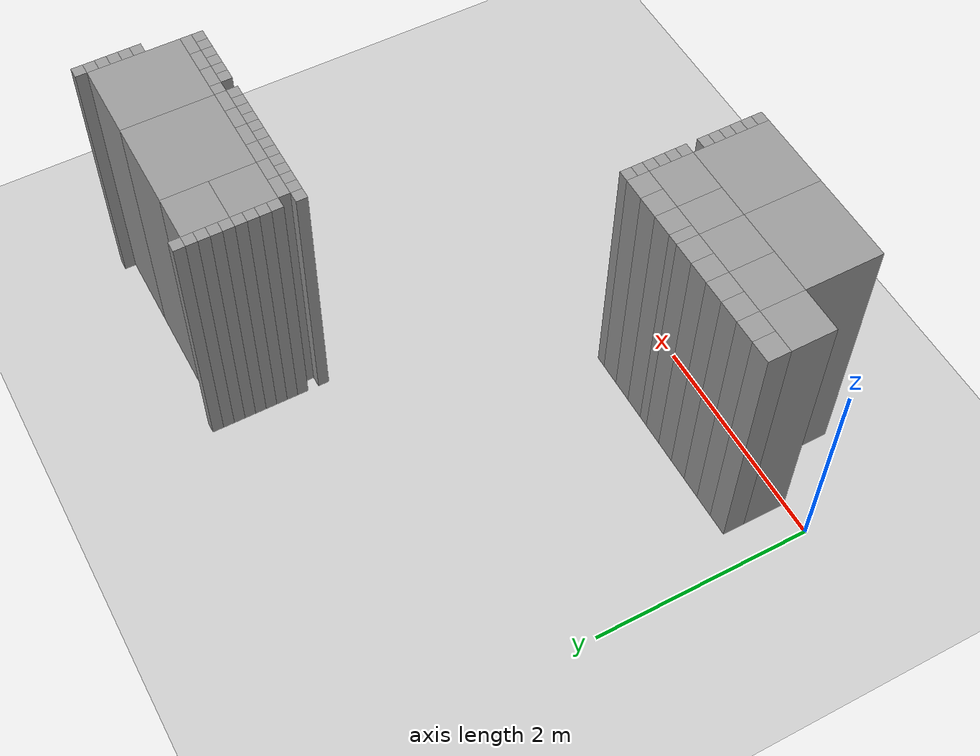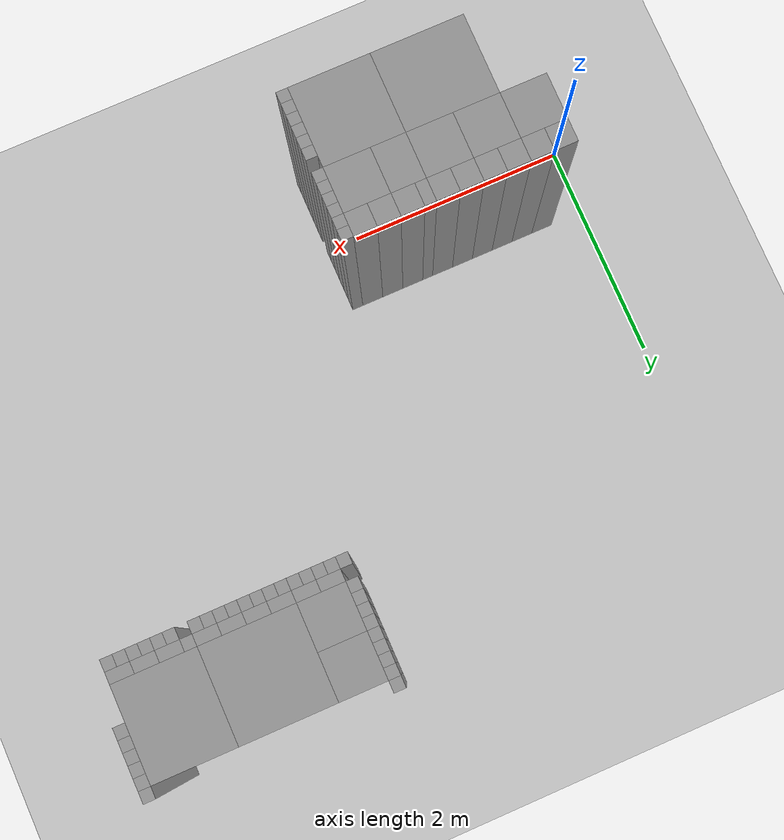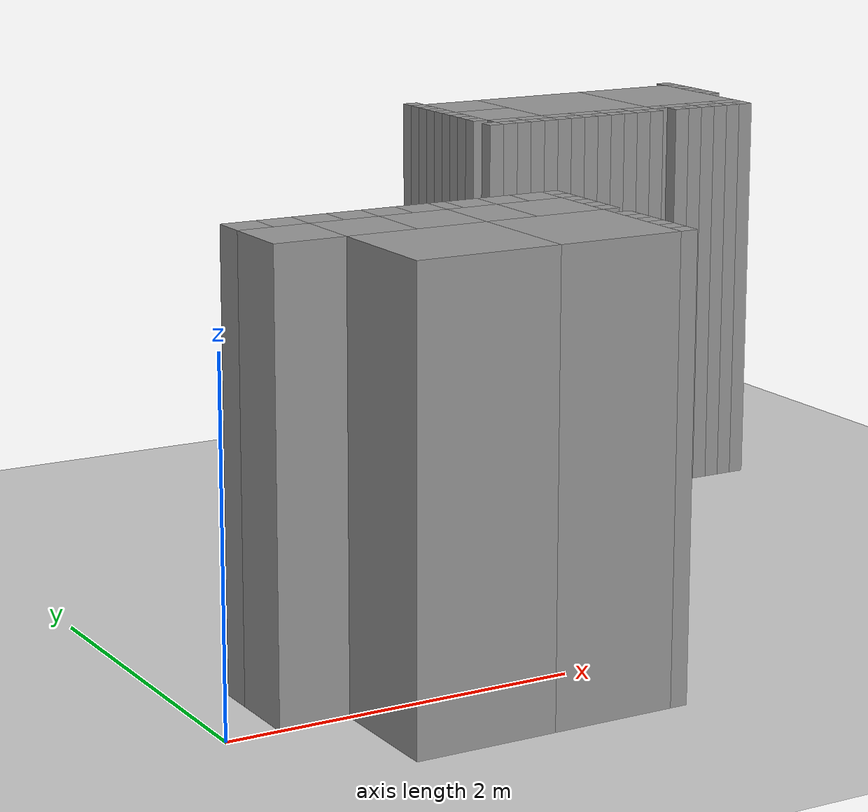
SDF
<sdf version="1.6">
 <world name="default">
  <include><uri>model://sun</uri></include>
  <include><uri>model://ground_plane</uri></include>
  <model name="stage_test">
   <static>1</static>
   <pose>-12 -12 0 0 0 0</pose>
   <link name="Wall_574">
    <pose>12.399999999999999 12.500000000000002 0 0 0 0</pose>
    <collision name="Wall_574_collision">
     <pose>0 0 1.25 0 0 0</pose>
     <geometry><box><size>0.1999999999999993 0.20000000000000107 2.5</size></box></geometry>
    </collision>
    <visual name="Wall_574_visual">
     <pose>0 0 1.25 0 0 0</pose>
     <geometry><box><size>0.1999999999999993 0.20000000000000107 2.5</size></box></geometry>
     <material>
      <script><uri>file://media/materials/scripts/gazebo.material</uri><name>Gazebo/Grey</name></script>
      <ambient>1 1 1 1</ambient>
     </material>
    </visual>
   </link>
   <link name="Wall_575">
    <pose>12.600000000000001 12.500000000000002 0 0 0 0</pose>
    <collision name="Wall_575_collision">
     <pose>0 0 1.25 0 0 0</pose>
     <geometry><box><size>0.20000000000000107 0.20000000000000107 2.5</size></box></geometry>
    </collision>
    <visual name="Wall_575_visual">
     <pose>0 0 1.25 0 0 0</pose>
     <geometry><box><size>0.20000000000000107 0.20000000000000107 2.5</size></box></geometry>
     <material>
      <script><uri>file://media/materials/scripts/gazebo.material</uri><name>Gazebo/Grey</name></script>
      <ambient>1 1 1 1</ambient>
     </material>
    </visual>
   </link>
   <link name="Wall_576">
    <pose>12.5 12.2 0 0 0 0</pose>
    <collision name="Wall_576_collision">
     <pose>0 0 1.25 0 0 0</pose>
     <geometry><box><size>0.40000000000000036 0.40000000000000036 2.5</size></box></geometry>
    </collision>
    <visual name="Wall_576_visual">
     <pose>0 0 1.25 0 0 0</pose>
     <geometry><box><size>0.40000000000000036 0.40000000000000036 2.5</size></box></geometry>
     <material>
      <script><uri>file://media/materials/scripts/gazebo.material</uri><name>Gazebo/Grey</name></script>
      <ambient>1 1 1 1</ambient>
     </material>
    </visual>
   </link>
   <link name="Wall_577">
    <pose>12.8 12.500000000000002 0 0 0 0</pose>
    <collision name="Wall_577_collision">
     <pose>0 0 1.25 0 0 0</pose>
     <geometry><box><size>0.1999999999999993 0.20000000000000107 2.5</size></box></geometry>
    </collision>
    <visual name="Wall_577_visual">
     <pose>0 0 1.25 0 0 0</pose>
     <geometry><box><size>0.1999999999999993 0.20000000000000107 2.5</size></box></geometry>
     <material>
      <script><uri>file://media/materials/scripts/gazebo.material</uri><name>Gazebo/Grey</name></script>
      <ambient>1 1 1 1</ambient>
     </material>
    </visual>
   </link>
   <link name="Wall_578">
    <pose>13.0 12.500000000000002 0 0 0 0</pose>
    <collision name="Wall_578_collision">
     <pose>0 0 1.25 0 0 0</pose>
     <geometry><box><size>0.20000000000000107 0.20000000000000107 2.5</size></box></geometry>
    </collision>
    <visual name="Wall_578_visual">
     <pose>0 0 1.25 0 0 0</pose>
     <geometry><box><size>0.20000000000000107 0.20000000000000107 2.5</size></box></geometry>
     <material>
      <script><uri>file://media/materials/scripts/gazebo.material</uri><name>Gazebo/Grey</name></script>
      <ambient>1 1 1 1</ambient>
     </material>
    </visual>
   </link>
   <link name="Wall_579">
    <pose>12.900000000000002 12.2 0 0 0 0</pose>
    <collision name="Wall_579_collision">
     <pose>0 0 1.25 0 0 0</pose>
     <geometry><box><size>0.40000000000000036 0.40000000000000036 2.5</size></box></geometry>
    </collision>
    <visual name="Wall_579_visual">
     <pose>0 0 1.25 0 0 0</pose>
     <geometry><box><size>0.40000000000000036 0.40000000000000036 2.5</size></box></geometry>
     <material>
      <script><uri>file://media/materials/scripts/gazebo.material</uri><name>Gazebo/Grey</name></script>
      <ambient>1 1 1 1</ambient>
     </material>
    </visual>
   </link>
   <link name="Wall_580">
    <pose>13.200000000000001 12.500000000000002 0 0 0 0</pose>
    <collision name="Wall_580_collision">
     <pose>0 0 1.25 0 0 0</pose>
     <geometry><box><size>0.1999999999999993 0.20000000000000107 2.5</size></box></geometry>
    </collision>
    <visual name="Wall_580_visual">
     <pose>0 0 1.25 0 0 0</pose>
     <geometry><box><size>0.1999999999999993 0.20000000000000107 2.5</size></box></geometry>
     <material>
      <script><uri>file://media/materials/scripts/gazebo.material</uri><name>Gazebo/Grey</name></script>
      <ambient>1 1 1 1</ambient>
     </material>
    </visual>
   </link>
   <link name="Wall_581">
    <pose>13.399999999999999 12.500000000000002 0 0 0 0</pose>
    <collision name="Wall_581_collision">
     <pose>0 0 1.25 0 0 0</pose>
     <geometry><box><size>0.1999999999999993 0.20000000000000107 2.5</size></box></geometry>
    </collision>
    <visual name="Wall_581_visual">
     <pose>0 0 1.25 0 0 0</pose>
     <geometry><box><size>0.1999999999999993 0.20000000000000107 2.5</size></box></geometry>
     <material>
      <script><uri>file://media/materials/scripts/gazebo.material</uri><name>Gazebo/Grey</name></script>
      <ambient>1 1 1 1</ambient>
     </material>
    </visual>
   </link>
   <link name="Wall_582">
    <pose>13.3 12.2 0 0 0 0</pose>
    <collision name="Wall_582_collision">
     <pose>0 0 1.25 0 0 0</pose>
     <geometry><box><size>0.3999999999999986 0.40000000000000036 2.5</size></box></geometry>
    </collision>
    <visual name="Wall_582_visual">
     <pose>0 0 1.25 0 0 0</pose>
     <geometry><box><size>0.3999999999999986 0.40000000000000036 2.5</size></box></geometry>
     <material>
      <script><uri>file://media/materials/scripts/gazebo.material</uri><name>Gazebo/Grey</name></script>
      <ambient>1 1 1 1</ambient>
     </material>
    </visual>
   </link>
   <link name="Wall_583">
    <pose>13.55 12.500000000000002 0 0 0 0</pose>
    <collision name="Wall_583_collision">
     <pose>0 0 1.25 0 0 0</pose>
     <geometry><box><size>0.10000000000000142 0.20000000000000107 2.5</size></box></geometry>
    </collision>
    <visual name="Wall_583_visual">
     <pose>0 0 1.25 0 0 0</pose>
     <geometry><box><size>0.10000000000000142 0.20000000000000107 2.5</size></box></geometry>
     <material>
      <script><uri>file://media/materials/scripts/gazebo.material</uri><name>Gazebo/Grey</name></script>
      <ambient>1 1 1 1</ambient>
     </material>
    </visual>
   </link>
   <link name="Wall_584">
    <pose>13.700000000000001 12.500000000000002 0 0 0 0</pose>
    <collision name="Wall_584_collision">
     <pose>0 0 1.25 0 0 0</pose>
     <geometry><box><size>0.1999999999999993 0.20000000000000107 2.5</size></box></geometry>
    </collision>
    <visual name="Wall_584_visual">
     <pose>0 0 1.25 0 0 0</pose>
     <geometry><box><size>0.1999999999999993 0.20000000000000107 2.5</size></box></geometry>
     <material>
      <script><uri>file://media/materials/scripts/gazebo.material</uri><name>Gazebo/Grey</name></script>
      <ambient>1 1 1 1</ambient>
     </material>
    </visual>
   </link>
   <link name="Wall_585">
    <pose>13.65 12.2 0 0 0 0</pose>
    <collision name="Wall_585_collision">
     <pose>0 0 1.25 0 0 0</pose>
     <geometry><box><size>0.3000000000000007 0.40000000000000036 2.5</size></box></geometry>
    </collision>
    <visual name="Wall_585_visual">
     <pose>0 0 1.25 0 0 0</pose>
     <geometry><box><size>0.3000000000000007 0.40000000000000036 2.5</size></box></geometry>
     <material>
      <script><uri>file://media/materials/scripts/gazebo.material</uri><name>Gazebo/Grey</name></script>
      <ambient>1 1 1 1</ambient>
     </material>
    </visual>
   </link>
   <link name="Wall_586">
    <pose>13.899999999999999 12.500000000000002 0 0 0 0</pose>
    <collision name="Wall_586_collision">
     <pose>0 0 1.25 0 0 0</pose>
     <geometry><box><size>0.1999999999999993 0.20000000000000107 2.5</size></box></geometry>
    </collision>
    <visual name="Wall_586_visual">
     <pose>0 0 1.25 0 0 0</pose>
     <geometry><box><size>0.1999999999999993 0.20000000000000107 2.5</size></box></geometry>
     <material>
      <script><uri>file://media/materials/scripts/gazebo.material</uri><name>Gazebo/Grey</name></script>
      <ambient>1 1 1 1</ambient>
     </material>
    </visual>
   </link>
   <link name="Wall_587">
    <pose>14.100000000000001 12.500000000000002 0 0 0 0</pose>
    <collision name="Wall_587_collision">
     <pose>0 0 1.25 0 0 0</pose>
     <geometry><box><size>0.20000000000000107 0.20000000000000107 2.5</size></box></geometry>
    </collision>
    <visual name="Wall_587_visual">
     <pose>0 0 1.25 0 0 0</pose>
     <geometry><box><size>0.20000000000000107 0.20000000000000107 2.5</size></box></geometry>
     <material>
      <script><uri>file://media/materials/scripts/gazebo.material</uri><name>Gazebo/Grey</name></script>
      <ambient>1 1 1 1</ambient>
     </material>
    </visual>
   </link>
   <link name="Wall_588">
    <pose>14.0 12.2 0 0 0 0</pose>
    <collision name="Wall_588_collision">
     <pose>0 0 1.25 0 0 0</pose>
     <geometry><box><size>0.40000000000000036 0.40000000000000036 2.5</size></box></geometry>
    </collision>
    <visual name="Wall_588_visual">
     <pose>0 0 1.25 0 0 0</pose>
     <geometry><box><size>0.40000000000000036 0.40000000000000036 2.5</size></box></geometry>
     <material>
      <script><uri>file://media/materials/scripts/gazebo.material</uri><name>Gazebo/Grey</name></script>
      <ambient>1 1 1 1</ambient>
     </material>
    </visual>
   </link>
   <link name="Wall_589">
    <pose>14.25 12.55 0 0 0 0</pose>
    <collision name="Wall_589_collision">
     <pose>0 0 1.25 0 0 0</pose>
     <geometry><box><size>0.09999999999999964 0.10000000000000142 2.5</size></box></geometry>
    </collision>
    <visual name="Wall_589_visual">
     <pose>0 0 1.25 0 0 0</pose>
     <geometry><box><size>0.09999999999999964 0.10000000000000142 2.5</size></box></geometry>
     <material>
      <script><uri>file://media/materials/scripts/gazebo.material</uri><name>Gazebo/Grey</name></script>
      <ambient>1 1 1 1</ambient>
     </material>
    </visual>
   </link>
   <link name="Wall_590">
    <pose>14.25 12.45 0 0 0 0</pose>
    <collision name="Wall_590_collision">
     <pose>0 0 1.25 0 0 0</pose>
     <geometry><box><size>0.09999999999999964 0.09999999999999964 2.5</size></box></geometry>
    </collision>
    <visual name="Wall_590_visual">
     <pose>0 0 1.25 0 0 0</pose>
     <geometry><box><size>0.09999999999999964 0.09999999999999964 2.5</size></box></geometry>
     <material>
      <script><uri>file://media/materials/scripts/gazebo.material</uri><name>Gazebo/Grey</name></script>
      <ambient>1 1 1 1</ambient>
     </material>
    </visual>
   </link>
   <link name="Wall_591">
    <pose>14.25 12.35 0 0 0 0</pose>
    <collision name="Wall_591_collision">
     <pose>0 0 1.25 0 0 0</pose>
     <geometry><box><size>0.09999999999999964 0.09999999999999964 2.5</size></box></geometry>
    </collision>
    <visual name="Wall_591_visual">
     <pose>0 0 1.25 0 0 0</pose>
     <geometry><box><size>0.09999999999999964 0.09999999999999964 2.5</size></box></geometry>
     <material>
      <script><uri>file://media/materials/scripts/gazebo.material</uri><name>Gazebo/Grey</name></script>
      <ambient>1 1 1 1</ambient>
     </material>
    </visual>
   </link>
   <link name="Wall_592">
    <pose>14.25 12.25 0 0 0 0</pose>
    <collision name="Wall_592_collision">
     <pose>0 0 1.25 0 0 0</pose>
     <geometry><box><size>0.09999999999999964 0.09999999999999964 2.5</size></box></geometry>
    </collision>
    <visual name="Wall_592_visual">
     <pose>0 0 1.25 0 0 0</pose>
     <geometry><box><size>0.09999999999999964 0.09999999999999964 2.5</size></box></geometry>
     <material>
      <script><uri>file://media/materials/scripts/gazebo.material</uri><name>Gazebo/Grey</name></script>
      <ambient>1 1 1 1</ambient>
     </material>
    </visual>
   </link>
   <link name="Wall_593">
    <pose>14.25 12.150000000000002 0 0 0 0</pose>
    <collision name="Wall_593_collision">
     <pose>0 0 1.25 0 0 0</pose>
     <geometry><box><size>0.09999999999999964 0.09999999999999964 2.5</size></box></geometry>
    </collision>
    <visual name="Wall_593_visual">
     <pose>0 0 1.25 0 0 0</pose>
     <geometry><box><size>0.09999999999999964 0.09999999999999964 2.5</size></box></geometry>
     <material>
      <script><uri>file://media/materials/scripts/gazebo.material</uri><name>Gazebo/Grey</name></script>
      <ambient>1 1 1 1</ambient>
     </material>
    </visual>
   </link>
   <link name="Wall_594">
    <pose>14.25 12.05 0 0 0 0</pose>
    <collision name="Wall_594_collision">
     <pose>0 0 1.25 0 0 0</pose>
     <geometry><box><size>0.09999999999999964 0.10000000000000142 2.5</size></box></geometry>
    </collision>
    <visual name="Wall_594_visual">
     <pose>0 0 1.25 0 0 0</pose>
     <geometry><box><size>0.09999999999999964 0.10000000000000142 2.5</size></box></geometry>
     <material>
      <script><uri>file://media/materials/scripts/gazebo.material</uri><name>Gazebo/Grey</name></script>
      <ambient>1 1 1 1</ambient>
     </material>
    </visual>
   </link>
   <link name="Wall_616">
    <pose>15.25 15.85 0 0 0 0</pose>
    <collision name="Wall_616_collision">
     <pose>0 0 1.25 0 0 0</pose>
     <geometry><box><size>0.09999999999999964 0.09999999999999964 2.5</size></box></geometry>
    </collision>
    <visual name="Wall_616_visual">
     <pose>0 0 1.25 0 0 0</pose>
     <geometry><box><size>0.09999999999999964 0.09999999999999964 2.5</size></box></geometry>
     <material>
      <script><uri>file://media/materials/scripts/gazebo.material</uri><name>Gazebo/Grey</name></script>
      <ambient>1 1 1 1</ambient>
     </material>
    </visual>
   </link>
   <link name="Wall_619">
    <pose>15.25 15.75 0 0 0 0</pose>
    <collision name="Wall_619_collision">
     <pose>0 0 1.25 0 0 0</pose>
     <geometry><box><size>0.09999999999999964 0.09999999999999964 2.5</size></box></geometry>
    </collision>
    <visual name="Wall_619_visual">
     <pose>0 0 1.25 0 0 0</pose>
     <geometry><box><size>0.09999999999999964 0.09999999999999964 2.5</size></box></geometry>
     <material>
      <script><uri>file://media/materials/scripts/gazebo.material</uri><name>Gazebo/Grey</name></script>
      <ambient>1 1 1 1</ambient>
     </material>
    </visual>
   </link>
   <link name="Wall_620">
    <pose>15.25 15.650000000000002 0 0 0 0</pose>
    <collision name="Wall_620_collision">
     <pose>0 0 1.25 0 0 0</pose>
     <geometry><box><size>0.09999999999999964 0.09999999999999964 2.5</size></box></geometry>
    </collision>
    <visual name="Wall_620_visual">
     <pose>0 0 1.25 0 0 0</pose>
     <geometry><box><size>0.09999999999999964 0.09999999999999964 2.5</size></box></geometry>
     <material>
      <script><uri>file://media/materials/scripts/gazebo.material</uri><name>Gazebo/Grey</name></script>
      <ambient>1 1 1 1</ambient>
     </material>
    </visual>
   </link>
   <link name="Wall_621">
    <pose>15.25 15.55 0 0 0 0</pose>
    <collision name="Wall_621_collision">
     <pose>0 0 1.25 0 0 0</pose>
     <geometry><box><size>0.09999999999999964 0.10000000000000142 2.5</size></box></geometry>
    </collision>
    <visual name="Wall_621_visual">
     <pose>0 0 1.25 0 0 0</pose>
     <geometry><box><size>0.09999999999999964 0.10000000000000142 2.5</size></box></geometry>
     <material>
      <script><uri>file://media/materials/scripts/gazebo.material</uri><name>Gazebo/Grey</name></script>
      <ambient>1 1 1 1</ambient>
     </material>
    </visual>
   </link>
   <link name="Wall_622">
    <pose>15.25 15.45 0 0 0 0</pose>
    <collision name="Wall_622_collision">
     <pose>0 0 1.25 0 0 0</pose>
     <geometry><box><size>0.09999999999999964 0.09999999999999964 2.5</size></box></geometry>
    </collision>
    <visual name="Wall_622_visual">
     <pose>0 0 1.25 0 0 0</pose>
     <geometry><box><size>0.09999999999999964 0.09999999999999964 2.5</size></box></geometry>
     <material>
      <script><uri>file://media/materials/scripts/gazebo.material</uri><name>Gazebo/Grey</name></script>
      <ambient>1 1 1 1</ambient>
     </material>
    </visual>
   </link>
   <link name="Wall_623">
    <pose>15.25 15.35 0 0 0 0</pose>
    <collision name="Wall_623_collision">
     <pose>0 0 1.25 0 0 0</pose>
     <geometry><box><size>0.09999999999999964 0.09999999999999964 2.5</size></box></geometry>
    </collision>
    <visual name="Wall_623_visual">
     <pose>0 0 1.25 0 0 0</pose>
     <geometry><box><size>0.09999999999999964 0.09999999999999964 2.5</size></box></geometry>
     <material>
      <script><uri>file://media/materials/scripts/gazebo.material</uri><name>Gazebo/Grey</name></script>
      <ambient>1 1 1 1</ambient>
     </material>
    </visual>
   </link>
   <link name="Wall_624">
    <pose>15.25 15.25 0 0 0 0</pose>
    <collision name="Wall_624_collision">
     <pose>0 0 1.25 0 0 0</pose>
     <geometry><box><size>0.09999999999999964 0.09999999999999964 2.5</size></box></geometry>
    </collision>
    <visual name="Wall_624_visual">
     <pose>0 0 1.25 0 0 0</pose>
     <geometry><box><size>0.09999999999999964 0.09999999999999964 2.5</size></box></geometry>
     <material>
      <script><uri>file://media/materials/scripts/gazebo.material</uri><name>Gazebo/Grey</name></script>
      <ambient>1 1 1 1</ambient>
     </material>
    </visual>
   </link>
   <link name="Wall_625">
    <pose>15.25 15.150000000000002 0 0 0 0</pose>
    <collision name="Wall_625_collision">
     <pose>0 0 1.25 0 0 0</pose>
     <geometry><box><size>0.09999999999999964 0.09999999999999964 2.5</size></box></geometry>
    </collision>
    <visual name="Wall_625_visual">
     <pose>0 0 1.25 0 0 0</pose>
     <geometry><box><size>0.09999999999999964 0.09999999999999964 2.5</size></box></geometry>
     <material>
      <script><uri>file://media/materials/scripts/gazebo.material</uri><name>Gazebo/Grey</name></script>
      <ambient>1 1 1 1</ambient>
     </material>
    </visual>
   </link>
   <link name="Wall_626">
    <pose>15.25 15.05 0 0 0 0</pose>
    <collision name="Wall_626_collision">
     <pose>0 0 1.25 0 0 0</pose>
     <geometry><box><size>0.09999999999999964 0.10000000000000142 2.5</size></box></geometry>
    </collision>
    <visual name="Wall_626_visual">
     <pose>0 0 1.25 0 0 0</pose>
     <geometry><box><size>0.09999999999999964 0.10000000000000142 2.5</size></box></geometry>
     <material>
      <script><uri>file://media/materials/scripts/gazebo.material</uri><name>Gazebo/Grey</name></script>
      <ambient>1 1 1 1</ambient>
     </material>
    </visual>
   </link>
   <link name="Wall_627">
    <pose>15.5 15.600000000000001 0 0 0 0</pose>
    <collision name="Wall_627_collision">
     <pose>0 0 1.25 0 0 0</pose>
     <geometry><box><size>0.40000000000000036 0.40000000000000036 2.5</size></box></geometry>
    </collision>
    <visual name="Wall_627_visual">
     <pose>0 0 1.25 0 0 0</pose>
     <geometry><box><size>0.40000000000000036 0.40000000000000036 2.5</size></box></geometry>
     <material>
      <script><uri>file://media/materials/scripts/gazebo.material</uri><name>Gazebo/Grey</name></script>
      <ambient>1 1 1 1</ambient>
     </material>
    </visual>
   </link>
   <link name="Wall_628">
    <pose>15.5 15.2 0 0 0 0</pose>
    <collision name="Wall_628_collision">
     <pose>0 0 1.25 0 0 0</pose>
     <geometry><box><size>0.40000000000000036 0.40000000000000036 2.5</size></box></geometry>
    </collision>
    <visual name="Wall_628_visual">
     <pose>0 0 1.25 0 0 0</pose>
     <geometry><box><size>0.40000000000000036 0.40000000000000036 2.5</size></box></geometry>
     <material>
      <script><uri>file://media/materials/scripts/gazebo.material</uri><name>Gazebo/Grey</name></script>
      <ambient>1 1 1 1</ambient>
     </material>
    </visual>
   </link>
   <link name="Wall_630">
    <pose>16.1 15.399999999999999 0 0 0 0</pose>
    <collision name="Wall_630_collision">
     <pose>0 0 1.25 0 0 0</pose>
     <geometry><box><size>0.7999999999999989 0.8000000000000007 2.5</size></box></geometry>
    </collision>
    <visual name="Wall_630_visual">
     <pose>0 0 1.25 0 0 0</pose>
     <geometry><box><size>0.7999999999999989 0.8000000000000007 2.5</size></box></geometry>
     <material>
      <script><uri>file://media/materials/scripts/gazebo.material</uri><name>Gazebo/Grey</name></script>
      <ambient>1 1 1 1</ambient>
     </material>
    </visual>
   </link>
   <link name="Wall_646">
    <pose>16.85 15.399999999999999 0 0 0 0</pose>
    <collision name="Wall_646_collision">
     <pose>0 0 1.25 0 0 0</pose>
     <geometry><box><size>0.6999999999999993 0.8000000000000007 2.5</size></box></geometry>
    </collision>
    <visual name="Wall_646_visual">
     <pose>0 0 1.25 0 0 0</pose>
     <geometry><box><size>0.6999999999999993 0.8000000000000007 2.5</size></box></geometry>
     <material>
      <script><uri>file://media/materials/scripts/gazebo.material</uri><name>Gazebo/Grey</name></script>
      <ambient>1 1 1 1</ambient>
     </material>
    </visual>
   </link>
   <link name="Wall_654">
    <pose>17.25 15.85 0 0 0 0</pose>
    <collision name="Wall_654_collision">
     <pose>0 0 1.25 0 0 0</pose>
     <geometry><box><size>0.10000000000000142 0.09999999999999964 2.5</size></box></geometry>
    </collision>
    <visual name="Wall_654_visual">
     <pose>0 0 1.25 0 0 0</pose>
     <geometry><box><size>0.10000000000000142 0.09999999999999964 2.5</size></box></geometry>
     <material>
      <script><uri>file://media/materials/scripts/gazebo.material</uri><name>Gazebo/Grey</name></script>
      <ambient>1 1 1 1</ambient>
     </material>
    </visual>
   </link>
   <link name="Wall_657">
    <pose>17.25 15.75 0 0 0 0</pose>
    <collision name="Wall_657_collision">
     <pose>0 0 1.25 0 0 0</pose>
     <geometry><box><size>0.10000000000000142 0.09999999999999964 2.5</size></box></geometry>
    </collision>
    <visual name="Wall_657_visual">
     <pose>0 0 1.25 0 0 0</pose>
     <geometry><box><size>0.10000000000000142 0.09999999999999964 2.5</size></box></geometry>
     <material>
      <script><uri>file://media/materials/scripts/gazebo.material</uri><name>Gazebo/Grey</name></script>
      <ambient>1 1 1 1</ambient>
     </material>
    </visual>
   </link>
   <link name="Wall_658">
    <pose>17.25 15.650000000000002 0 0 0 0</pose>
    <collision name="Wall_658_collision">
     <pose>0 0 1.25 0 0 0</pose>
     <geometry><box><size>0.10000000000000142 0.09999999999999964 2.5</size></box></geometry>
    </collision>
    <visual name="Wall_658_visual">
     <pose>0 0 1.25 0 0 0</pose>
     <geometry><box><size>0.10000000000000142 0.09999999999999964 2.5</size></box></geometry>
     <material>
      <script><uri>file://media/materials/scripts/gazebo.material</uri><name>Gazebo/Grey</name></script>
      <ambient>1 1 1 1</ambient>
     </material>
    </visual>
   </link>
   <link name="Wall_659">
    <pose>17.25 15.55 0 0 0 0</pose>
    <collision name="Wall_659_collision">
     <pose>0 0 1.25 0 0 0</pose>
     <geometry><box><size>0.10000000000000142 0.10000000000000142 2.5</size></box></geometry>
    </collision>
    <visual name="Wall_659_visual">
     <pose>0 0 1.25 0 0 0</pose>
     <geometry><box><size>0.10000000000000142 0.10000000000000142 2.5</size></box></geometry>
     <material>
      <script><uri>file://media/materials/scripts/gazebo.material</uri><name>Gazebo/Grey</name></script>
      <ambient>1 1 1 1</ambient>
     </material>
    </visual>
   </link>
   <link name="Wall_660">
    <pose>17.25 15.45 0 0 0 0</pose>
    <collision name="Wall_660_collision">
     <pose>0 0 1.25 0 0 0</pose>
     <geometry><box><size>0.10000000000000142 0.09999999999999964 2.5</size></box></geometry>
    </collision>
    <visual name="Wall_660_visual">
     <pose>0 0 1.25 0 0 0</pose>
     <geometry><box><size>0.10000000000000142 0.09999999999999964 2.5</size></box></geometry>
     <material>
      <script><uri>file://media/materials/scripts/gazebo.material</uri><name>Gazebo/Grey</name></script>
      <ambient>1 1 1 1</ambient>
     </material>
    </visual>
   </link>
   <link name="Wall_661">
    <pose>17.25 15.35 0 0 0 0</pose>
    <collision name="Wall_661_collision">
     <pose>0 0 1.25 0 0 0</pose>
     <geometry><box><size>0.10000000000000142 0.09999999999999964 2.5</size></box></geometry>
    </collision>
    <visual name="Wall_661_visual">
     <pose>0 0 1.25 0 0 0</pose>
     <geometry><box><size>0.10000000000000142 0.09999999999999964 2.5</size></box></geometry>
     <material>
      <script><uri>file://media/materials/scripts/gazebo.material</uri><name>Gazebo/Grey</name></script>
      <ambient>1 1 1 1</ambient>
     </material>
    </visual>
   </link>
   <link name="Wall_665">
    <pose>15.25 14.85 0 0 0 0</pose>
    <collision name="Wall_665_collision">
     <pose>0 0 1.25 0 0 0</pose>
     <geometry><box><size>0.09999999999999964 0.09999999999999964 2.5</size></box></geometry>
    </collision>
    <visual name="Wall_665_visual">
     <pose>0 0 1.25 0 0 0</pose>
     <geometry><box><size>0.09999999999999964 0.09999999999999964 2.5</size></box></geometry>
     <material>
      <script><uri>file://media/materials/scripts/gazebo.material</uri><name>Gazebo/Grey</name></script>
      <ambient>1 1 1 1</ambient>
     </material>
    </visual>
   </link>
   <link name="Wall_666">
    <pose>15.399999999999999 14.95 0 0 0 0</pose>
    <collision name="Wall_666_collision">
     <pose>0 0 1.25 0 0 0</pose>
     <geometry><box><size>0.1999999999999993 0.09999999999999964 2.5</size></box></geometry>
    </collision>
    <visual name="Wall_666_visual">
     <pose>0 0 1.25 0 0 0</pose>
     <geometry><box><size>0.1999999999999993 0.09999999999999964 2.5</size></box></geometry>
     <material>
      <script><uri>file://media/materials/scripts/gazebo.material</uri><name>Gazebo/Grey</name></script>
      <ambient>1 1 1 1</ambient>
     </material>
    </visual>
   </link>
   <link name="Wall_667">
    <pose>15.350000000000001 14.85 0 0 0 0</pose>
    <collision name="Wall_667_collision">
     <pose>0 0 1.25 0 0 0</pose>
     <geometry><box><size>0.09999999999999964 0.09999999999999964 2.5</size></box></geometry>
    </collision>
    <visual name="Wall_667_visual">
     <pose>0 0 1.25 0 0 0</pose>
     <geometry><box><size>0.09999999999999964 0.09999999999999964 2.5</size></box></geometry>
     <material>
      <script><uri>file://media/materials/scripts/gazebo.material</uri><name>Gazebo/Grey</name></script>
      <ambient>1 1 1 1</ambient>
     </material>
    </visual>
   </link>
   <link name="Wall_668">
    <pose>15.45 14.85 0 0 0 0</pose>
    <collision name="Wall_668_collision">
     <pose>0 0 1.25 0 0 0</pose>
     <geometry><box><size>0.09999999999999964 0.09999999999999964 2.5</size></box></geometry>
    </collision>
    <visual name="Wall_668_visual">
     <pose>0 0 1.25 0 0 0</pose>
     <geometry><box><size>0.09999999999999964 0.09999999999999964 2.5</size></box></geometry>
     <material>
      <script><uri>file://media/materials/scripts/gazebo.material</uri><name>Gazebo/Grey</name></script>
      <ambient>1 1 1 1</ambient>
     </material>
    </visual>
   </link>
   <link name="Wall_669">
    <pose>15.600000000000001 14.95 0 0 0 0</pose>
    <collision name="Wall_669_collision">
     <pose>0 0 1.25 0 0 0</pose>
     <geometry><box><size>0.20000000000000107 0.09999999999999964 2.5</size></box></geometry>
    </collision>
    <visual name="Wall_669_visual">
     <pose>0 0 1.25 0 0 0</pose>
     <geometry><box><size>0.20000000000000107 0.09999999999999964 2.5</size></box></geometry>
     <material>
      <script><uri>file://media/materials/scripts/gazebo.material</uri><name>Gazebo/Grey</name></script>
      <ambient>1 1 1 1</ambient>
     </material>
    </visual>
   </link>
   <link name="Wall_670">
    <pose>15.55 14.85 0 0 0 0</pose>
    <collision name="Wall_670_collision">
     <pose>0 0 1.25 0 0 0</pose>
     <geometry><box><size>0.10000000000000142 0.09999999999999964 2.5</size></box></geometry>
    </collision>
    <visual name="Wall_670_visual">
     <pose>0 0 1.25 0 0 0</pose>
     <geometry><box><size>0.10000000000000142 0.09999999999999964 2.5</size></box></geometry>
     <material>
      <script><uri>file://media/materials/scripts/gazebo.material</uri><name>Gazebo/Grey</name></script>
      <ambient>1 1 1 1</ambient>
     </material>
    </visual>
   </link>
   <link name="Wall_671">
    <pose>15.650000000000002 14.85 0 0 0 0</pose>
    <collision name="Wall_671_collision">
     <pose>0 0 1.25 0 0 0</pose>
     <geometry><box><size>0.09999999999999964 0.09999999999999964 2.5</size></box></geometry>
    </collision>
    <visual name="Wall_671_visual">
     <pose>0 0 1.25 0 0 0</pose>
     <geometry><box><size>0.09999999999999964 0.09999999999999964 2.5</size></box></geometry>
     <material>
      <script><uri>file://media/materials/scripts/gazebo.material</uri><name>Gazebo/Grey</name></script>
      <ambient>1 1 1 1</ambient>
     </material>
    </visual>
   </link>
   <link name="Wall_672">
    <pose>15.8 14.95 0 0 0 0</pose>
    <collision name="Wall_672_collision">
     <pose>0 0 1.25 0 0 0</pose>
     <geometry><box><size>0.1999999999999993 0.09999999999999964 2.5</size></box></geometry>
    </collision>
    <visual name="Wall_672_visual">
     <pose>0 0 1.25 0 0 0</pose>
     <geometry><box><size>0.1999999999999993 0.09999999999999964 2.5</size></box></geometry>
     <material>
      <script><uri>file://media/materials/scripts/gazebo.material</uri><name>Gazebo/Grey</name></script>
      <ambient>1 1 1 1</ambient>
     </material>
    </visual>
   </link>
   <link name="Wall_673">
    <pose>15.75 14.85 0 0 0 0</pose>
    <collision name="Wall_673_collision">
     <pose>0 0 1.25 0 0 0</pose>
     <geometry><box><size>0.09999999999999964 0.09999999999999964 2.5</size></box></geometry>
    </collision>
    <visual name="Wall_673_visual">
     <pose>0 0 1.25 0 0 0</pose>
     <geometry><box><size>0.09999999999999964 0.09999999999999964 2.5</size></box></geometry>
     <material>
      <script><uri>file://media/materials/scripts/gazebo.material</uri><name>Gazebo/Grey</name></script>
      <ambient>1 1 1 1</ambient>
     </material>
    </visual>
   </link>
   <link name="Wall_674">
    <pose>15.850000000000001 14.85 0 0 0 0</pose>
    <collision name="Wall_674_collision">
     <pose>0 0 1.25 0 0 0</pose>
     <geometry><box><size>0.09999999999999964 0.09999999999999964 2.5</size></box></geometry>
    </collision>
    <visual name="Wall_674_visual">
     <pose>0 0 1.25 0 0 0</pose>
     <geometry><box><size>0.09999999999999964 0.09999999999999964 2.5</size></box></geometry>
     <material>
      <script><uri>file://media/materials/scripts/gazebo.material</uri><name>Gazebo/Grey</name></script>
      <ambient>1 1 1 1</ambient>
     </material>
    </visual>
   </link>
   <link name="Wall_675">
    <pose>16.0 14.95 0 0 0 0</pose>
    <collision name="Wall_675_collision">
     <pose>0 0 1.25 0 0 0</pose>
     <geometry><box><size>0.20000000000000107 0.09999999999999964 2.5</size></box></geometry>
    </collision>
    <visual name="Wall_675_visual">
     <pose>0 0 1.25 0 0 0</pose>
     <geometry><box><size>0.20000000000000107 0.09999999999999964 2.5</size></box></geometry>
     <material>
      <script><uri>file://media/materials/scripts/gazebo.material</uri><name>Gazebo/Grey</name></script>
      <ambient>1 1 1 1</ambient>
     </material>
    </visual>
   </link>
   <link name="Wall_676">
    <pose>15.95 14.85 0 0 0 0</pose>
    <collision name="Wall_676_collision">
     <pose>0 0 1.25 0 0 0</pose>
     <geometry><box><size>0.09999999999999964 0.09999999999999964 2.5</size></box></geometry>
    </collision>
    <visual name="Wall_676_visual">
     <pose>0 0 1.25 0 0 0</pose>
     <geometry><box><size>0.09999999999999964 0.09999999999999964 2.5</size></box></geometry>
     <material>
      <script><uri>file://media/materials/scripts/gazebo.material</uri><name>Gazebo/Grey</name></script>
      <ambient>1 1 1 1</ambient>
     </material>
    </visual>
   </link>
   <link name="Wall_677">
    <pose>16.05 14.85 0 0 0 0</pose>
    <collision name="Wall_677_collision">
     <pose>0 0 1.25 0 0 0</pose>
     <geometry><box><size>0.10000000000000142 0.09999999999999964 2.5</size></box></geometry>
    </collision>
    <visual name="Wall_677_visual">
     <pose>0 0 1.25 0 0 0</pose>
     <geometry><box><size>0.10000000000000142 0.09999999999999964 2.5</size></box></geometry>
     <material>
      <script><uri>file://media/materials/scripts/gazebo.material</uri><name>Gazebo/Grey</name></script>
      <ambient>1 1 1 1</ambient>
     </material>
    </visual>
   </link>
   <link name="Wall_678">
    <pose>16.200000000000003 14.95 0 0 0 0</pose>
    <collision name="Wall_678_collision">
     <pose>0 0 1.25 0 0 0</pose>
     <geometry><box><size>0.1999999999999993 0.09999999999999964 2.5</size></box></geometry>
    </collision>
    <visual name="Wall_678_visual">
     <pose>0 0 1.25 0 0 0</pose>
     <geometry><box><size>0.1999999999999993 0.09999999999999964 2.5</size></box></geometry>
     <material>
      <script><uri>file://media/materials/scripts/gazebo.material</uri><name>Gazebo/Grey</name></script>
      <ambient>1 1 1 1</ambient>
     </material>
    </visual>
   </link>
   <link name="Wall_679">
    <pose>16.15 14.85 0 0 0 0</pose>
    <collision name="Wall_679_collision">
     <pose>0 0 1.25 0 0 0</pose>
     <geometry><box><size>0.09999999999999787 0.09999999999999964 2.5</size></box></geometry>
    </collision>
    <visual name="Wall_679_visual">
     <pose>0 0 1.25 0 0 0</pose>
     <geometry><box><size>0.09999999999999787 0.09999999999999964 2.5</size></box></geometry>
     <material>
      <script><uri>file://media/materials/scripts/gazebo.material</uri><name>Gazebo/Grey</name></script>
      <ambient>1 1 1 1</ambient>
     </material>
    </visual>
   </link>
   <link name="Wall_680">
    <pose>16.25 14.85 0 0 0 0</pose>
    <collision name="Wall_680_collision">
     <pose>0 0 1.25 0 0 0</pose>
     <geometry><box><size>0.10000000000000142 0.09999999999999964 2.5</size></box></geometry>
    </collision>
    <visual name="Wall_680_visual">
     <pose>0 0 1.25 0 0 0</pose>
     <geometry><box><size>0.10000000000000142 0.09999999999999964 2.5</size></box></geometry>
     <material>
      <script><uri>file://media/materials/scripts/gazebo.material</uri><name>Gazebo/Grey</name></script>
      <ambient>1 1 1 1</ambient>
     </material>
    </visual>
   </link>
   <link name="Wall_681">
    <pose>16.4 14.95 0 0 0 0</pose>
    <collision name="Wall_681_collision">
     <pose>0 0 1.25 0 0 0</pose>
     <geometry><box><size>0.1999999999999993 0.09999999999999964 2.5</size></box></geometry>
    </collision>
    <visual name="Wall_681_visual">
     <pose>0 0 1.25 0 0 0</pose>
     <geometry><box><size>0.1999999999999993 0.09999999999999964 2.5</size></box></geometry>
     <material>
      <script><uri>file://media/materials/scripts/gazebo.material</uri><name>Gazebo/Grey</name></script>
      <ambient>1 1 1 1</ambient>
     </material>
    </visual>
   </link>
   <link name="Wall_682">
    <pose>16.35 14.85 0 0 0 0</pose>
    <collision name="Wall_682_collision">
     <pose>0 0 1.25 0 0 0</pose>
     <geometry><box><size>0.10000000000000142 0.09999999999999964 2.5</size></box></geometry>
    </collision>
    <visual name="Wall_682_visual">
     <pose>0 0 1.25 0 0 0</pose>
     <geometry><box><size>0.10000000000000142 0.09999999999999964 2.5</size></box></geometry>
     <material>
      <script><uri>file://media/materials/scripts/gazebo.material</uri><name>Gazebo/Grey</name></script>
      <ambient>1 1 1 1</ambient>
     </material>
    </visual>
   </link>
   <link name="Wall_683">
    <pose>16.450000000000003 14.85 0 0 0 0</pose>
    <collision name="Wall_683_collision">
     <pose>0 0 1.25 0 0 0</pose>
     <geometry><box><size>0.09999999999999787 0.09999999999999964 2.5</size></box></geometry>
    </collision>
    <visual name="Wall_683_visual">
     <pose>0 0 1.25 0 0 0</pose>
     <geometry><box><size>0.09999999999999787 0.09999999999999964 2.5</size></box></geometry>
     <material>
      <script><uri>file://media/materials/scripts/gazebo.material</uri><name>Gazebo/Grey</name></script>
      <ambient>1 1 1 1</ambient>
     </material>
    </visual>
   </link>
   <link name="Wall_684">
    <pose>16.55 14.95 0 0 0 0</pose>
    <collision name="Wall_684_collision">
     <pose>0 0 1.25 0 0 0</pose>
     <geometry><box><size>0.10000000000000142 0.09999999999999964 2.5</size></box></geometry>
    </collision>
    <visual name="Wall_684_visual">
     <pose>0 0 1.25 0 0 0</pose>
     <geometry><box><size>0.10000000000000142 0.09999999999999964 2.5</size></box></geometry>
     <material>
      <script><uri>file://media/materials/scripts/gazebo.material</uri><name>Gazebo/Grey</name></script>
      <ambient>1 1 1 1</ambient>
     </material>
    </visual>
   </link>
   <link name="Wall_685">
    <pose>16.700000000000003 14.95 0 0 0 0</pose>
    <collision name="Wall_685_collision">
     <pose>0 0 1.25 0 0 0</pose>
     <geometry><box><size>0.1999999999999993 0.09999999999999964 2.5</size></box></geometry>
    </collision>
    <visual name="Wall_685_visual">
     <pose>0 0 1.25 0 0 0</pose>
     <geometry><box><size>0.1999999999999993 0.09999999999999964 2.5</size></box></geometry>
     <material>
      <script><uri>file://media/materials/scripts/gazebo.material</uri><name>Gazebo/Grey</name></script>
      <ambient>1 1 1 1</ambient>
     </material>
    </visual>
   </link>
   <link name="Wall_686">
    <pose>16.65 14.85 0 0 0 0</pose>
    <collision name="Wall_686_collision">
     <pose>0 0 1.25 0 0 0</pose>
     <geometry><box><size>0.09999999999999787 0.09999999999999964 2.5</size></box></geometry>
    </collision>
    <visual name="Wall_686_visual">
     <pose>0 0 1.25 0 0 0</pose>
     <geometry><box><size>0.09999999999999787 0.09999999999999964 2.5</size></box></geometry>
     <material>
      <script><uri>file://media/materials/scripts/gazebo.material</uri><name>Gazebo/Grey</name></script>
      <ambient>1 1 1 1</ambient>
     </material>
    </visual>
   </link>
   <link name="Wall_687">
    <pose>16.75 14.85 0 0 0 0</pose>
    <collision name="Wall_687_collision">
     <pose>0 0 1.25 0 0 0</pose>
     <geometry><box><size>0.10000000000000142 0.09999999999999964 2.5</size></box></geometry>
    </collision>
    <visual name="Wall_687_visual">
     <pose>0 0 1.25 0 0 0</pose>
     <geometry><box><size>0.10000000000000142 0.09999999999999964 2.5</size></box></geometry>
     <material>
      <script><uri>file://media/materials/scripts/gazebo.material</uri><name>Gazebo/Grey</name></script>
      <ambient>1 1 1 1</ambient>
     </material>
    </visual>
   </link>
   <link name="Wall_688">
    <pose>16.9 14.95 0 0 0 0</pose>
    <collision name="Wall_688_collision">
     <pose>0 0 1.25 0 0 0</pose>
     <geometry><box><size>0.1999999999999993 0.09999999999999964 2.5</size></box></geometry>
    </collision>
    <visual name="Wall_688_visual">
     <pose>0 0 1.25 0 0 0</pose>
     <geometry><box><size>0.1999999999999993 0.09999999999999964 2.5</size></box></geometry>
     <material>
      <script><uri>file://media/materials/scripts/gazebo.material</uri><name>Gazebo/Grey</name></script>
      <ambient>1 1 1 1</ambient>
     </material>
    </visual>
   </link>
   <link name="Wall_689">
    <pose>16.85 14.85 0 0 0 0</pose>
    <collision name="Wall_689_collision">
     <pose>0 0 1.25 0 0 0</pose>
     <geometry><box><size>0.10000000000000142 0.09999999999999964 2.5</size></box></geometry>
    </collision>
    <visual name="Wall_689_visual">
     <pose>0 0 1.25 0 0 0</pose>
     <geometry><box><size>0.10000000000000142 0.09999999999999964 2.5</size></box></geometry>
     <material>
      <script><uri>file://media/materials/scripts/gazebo.material</uri><name>Gazebo/Grey</name></script>
      <ambient>1 1 1 1</ambient>
     </material>
    </visual>
   </link>
   <link name="Wall_690">
    <pose>16.950000000000003 14.85 0 0 0 0</pose>
    <collision name="Wall_690_collision">
     <pose>0 0 1.25 0 0 0</pose>
     <geometry><box><size>0.09999999999999787 0.09999999999999964 2.5</size></box></geometry>
    </collision>
    <visual name="Wall_690_visual">
     <pose>0 0 1.25 0 0 0</pose>
     <geometry><box><size>0.09999999999999787 0.09999999999999964 2.5</size></box></geometry>
     <material>
      <script><uri>file://media/materials/scripts/gazebo.material</uri><name>Gazebo/Grey</name></script>
      <ambient>1 1 1 1</ambient>
     </material>
    </visual>
   </link>
   <link name="Wall_691">
    <pose>17.1 14.95 0 0 0 0</pose>
    <collision name="Wall_691_collision">
     <pose>0 0 1.25 0 0 0</pose>
     <geometry><box><size>0.1999999999999993 0.09999999999999964 2.5</size></box></geometry>
    </collision>
    <visual name="Wall_691_visual">
     <pose>0 0 1.25 0 0 0</pose>
     <geometry><box><size>0.1999999999999993 0.09999999999999964 2.5</size></box></geometry>
     <material>
      <script><uri>file://media/materials/scripts/gazebo.material</uri><name>Gazebo/Grey</name></script>
      <ambient>1 1 1 1</ambient>
     </material>
    </visual>
   </link>
   <link name="Wall_692">
    <pose>17.05 14.85 0 0 0 0</pose>
    <collision name="Wall_692_collision">
     <pose>0 0 1.25 0 0 0</pose>
     <geometry><box><size>0.10000000000000142 0.09999999999999964 2.5</size></box></geometry>
    </collision>
    <visual name="Wall_692_visual">
     <pose>0 0 1.25 0 0 0</pose>
     <geometry><box><size>0.10000000000000142 0.09999999999999964 2.5</size></box></geometry>
     <material>
      <script><uri>file://media/materials/scripts/gazebo.material</uri><name>Gazebo/Grey</name></script>
      <ambient>1 1 1 1</ambient>
     </material>
    </visual>
   </link>
   <link name="Wall_693">
    <pose>17.15 14.85 0 0 0 0</pose>
    <collision name="Wall_693_collision">
     <pose>0 0 1.25 0 0 0</pose>
     <geometry><box><size>0.09999999999999787 0.09999999999999964 2.5</size></box></geometry>
    </collision>
    <visual name="Wall_693_visual">
     <pose>0 0 1.25 0 0 0</pose>
     <geometry><box><size>0.09999999999999787 0.09999999999999964 2.5</size></box></geometry>
     <material>
      <script><uri>file://media/materials/scripts/gazebo.material</uri><name>Gazebo/Grey</name></script>
      <ambient>1 1 1 1</ambient>
     </material>
    </visual>
   </link>
   <link name="Wall_811">
    <pose>13.100000000000001 11.65 0 0 0 0</pose>
    <collision name="Wall_811_collision">
     <pose>0 0 1.25 0 0 0</pose>
     <geometry><box><size>0.7999999999999989 0.6999999999999993 2.5</size></box></geometry>
    </collision>
    <visual name="Wall_811_visual">
     <pose>0 0 1.25 0 0 0</pose>
     <geometry><box><size>0.7999999999999989 0.6999999999999993 2.5</size></box></geometry>
     <material>
      <script><uri>file://media/materials/scripts/gazebo.material</uri><name>Gazebo/Grey</name></script>
      <ambient>1 1 1 1</ambient>
     </material>
    </visual>
   </link>
   <link name="Wall_812">
    <pose>13.850000000000001 11.65 0 0 0 0</pose>
    <collision name="Wall_812_collision">
     <pose>0 0 1.25 0 0 0</pose>
     <geometry><box><size>0.7000000000000011 0.6999999999999993 2.5</size></box></geometry>
    </collision>
    <visual name="Wall_812_visual">
     <pose>0 0 1.25 0 0 0</pose>
     <geometry><box><size>0.7000000000000011 0.6999999999999993 2.5</size></box></geometry>
     <material>
      <script><uri>file://media/materials/scripts/gazebo.material</uri><name>Gazebo/Grey</name></script>
      <ambient>1 1 1 1</ambient>
     </material>
    </visual>
   </link>
   <link name="Wall_813">
    <pose>14.25 11.85 0 0 0 0</pose>
    <collision name="Wall_813_collision">
     <pose>0 0 1.25 0 0 0</pose>
     <geometry><box><size>0.09999999999999964 0.09999999999999964 2.5</size></box></geometry>
    </collision>
    <visual name="Wall_813_visual">
     <pose>0 0 1.25 0 0 0</pose>
     <geometry><box><size>0.09999999999999964 0.09999999999999964 2.5</size></box></geometry>
     <material>
      <script><uri>file://media/materials/scripts/gazebo.material</uri><name>Gazebo/Grey</name></script>
      <ambient>1 1 1 1</ambient>
     </material>
    </visual>
   </link>
   <link name="Wall_814">
    <pose>14.25 11.75 0 0 0 0</pose>
    <collision name="Wall_814_collision">
     <pose>0 0 1.25 0 0 0</pose>
     <geometry><box><size>0.09999999999999964 0.09999999999999964 2.5</size></box></geometry>
    </collision>
    <visual name="Wall_814_visual">
     <pose>0 0 1.25 0 0 0</pose>
     <geometry><box><size>0.09999999999999964 0.09999999999999964 2.5</size></box></geometry>
     <material>
      <script><uri>file://media/materials/scripts/gazebo.material</uri><name>Gazebo/Grey</name></script>
      <ambient>1 1 1 1</ambient>
     </material>
    </visual>
   </link>
   <link name="Wall_815">
    <pose>14.25 11.650000000000002 0 0 0 0</pose>
    <collision name="Wall_815_collision">
     <pose>0 0 1.25 0 0 0</pose>
     <geometry><box><size>0.09999999999999964 0.09999999999999964 2.5</size></box></geometry>
    </collision>
    <visual name="Wall_815_visual">
     <pose>0 0 1.25 0 0 0</pose>
     <geometry><box><size>0.09999999999999964 0.09999999999999964 2.5</size></box></geometry>
     <material>
      <script><uri>file://media/materials/scripts/gazebo.material</uri><name>Gazebo/Grey</name></script>
      <ambient>1 1 1 1</ambient>
     </material>
    </visual>
   </link>
   <link name="Wall_816">
    <pose>14.25 11.55 0 0 0 0</pose>
    <collision name="Wall_816_collision">
     <pose>0 0 1.25 0 0 0</pose>
     <geometry><box><size>0.09999999999999964 0.10000000000000142 2.5</size></box></geometry>
    </collision>
    <visual name="Wall_816_visual">
     <pose>0 0 1.25 0 0 0</pose>
     <geometry><box><size>0.09999999999999964 0.10000000000000142 2.5</size></box></geometry>
     <material>
      <script><uri>file://media/materials/scripts/gazebo.material</uri><name>Gazebo/Grey</name></script>
      <ambient>1 1 1 1</ambient>
     </material>
    </visual>
   </link>
   <link name="Wall_817">
    <pose>14.25 11.45 0 0 0 0</pose>
    <collision name="Wall_817_collision">
     <pose>0 0 1.25 0 0 0</pose>
     <geometry><box><size>0.09999999999999964 0.09999999999999964 2.5</size></box></geometry>
    </collision>
    <visual name="Wall_817_visual">
     <pose>0 0 1.25 0 0 0</pose>
     <geometry><box><size>0.09999999999999964 0.09999999999999964 2.5</size></box></geometry>
     <material>
      <script><uri>file://media/materials/scripts/gazebo.material</uri><name>Gazebo/Grey</name></script>
      <ambient>1 1 1 1</ambient>
     </material>
    </visual>
   </link>
   <link name="Wall_818">
    <pose>14.25 11.35 0 0 0 0</pose>
    <collision name="Wall_818_collision">
     <pose>0 0 1.25 0 0 0</pose>
     <geometry><box><size>0.09999999999999964 0.09999999999999964 2.5</size></box></geometry>
    </collision>
    <visual name="Wall_818_visual">
     <pose>0 0 1.25 0 0 0</pose>
     <geometry><box><size>0.09999999999999964 0.09999999999999964 2.5</size></box></geometry>
     <material>
      <script><uri>file://media/materials/scripts/gazebo.material</uri><name>Gazebo/Grey</name></script>
      <ambient>1 1 1 1</ambient>
     </material>
    </visual>
   </link>
  </model>
 </world>
</sdf>
